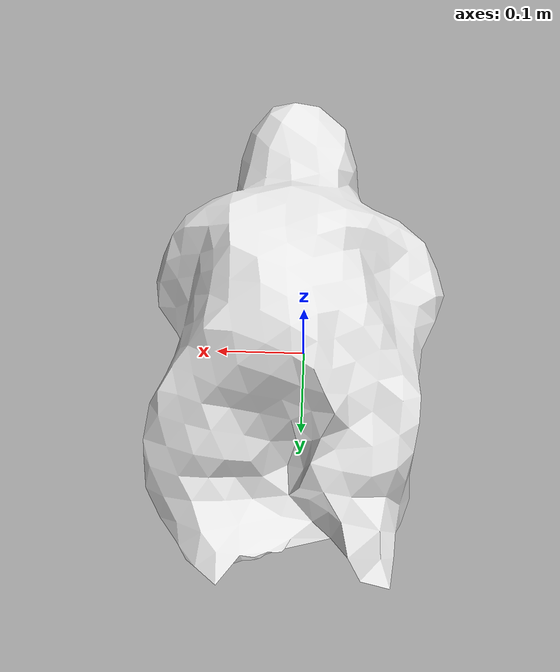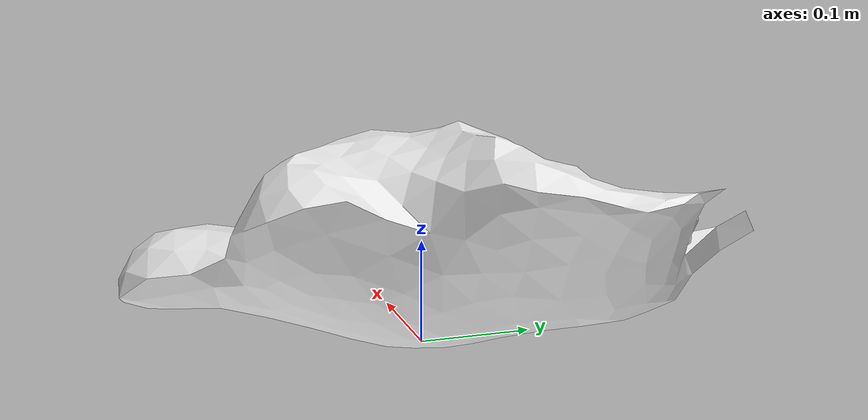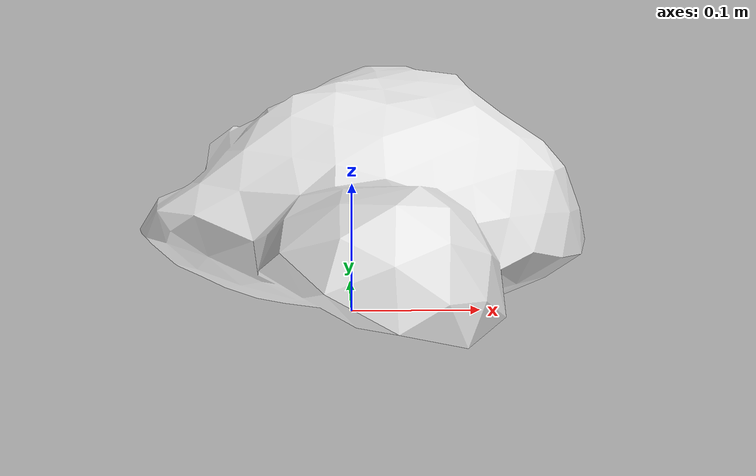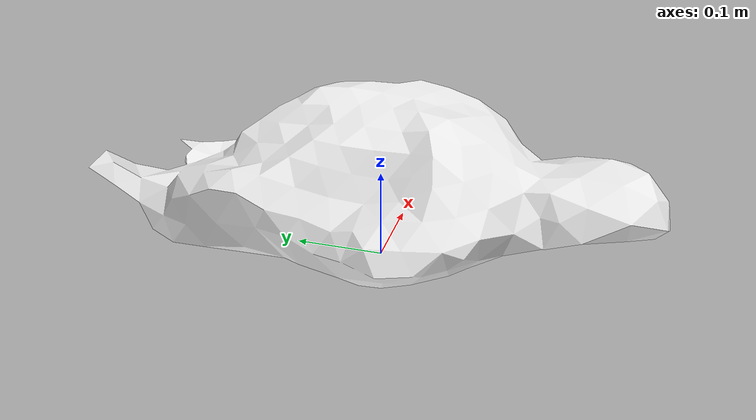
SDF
<?xml version="1.0" ?><sdf version="1.5"><model name="baby-doll2">
<link name="link">
<pose>0 0 0 0 0 0</pose>
<inertial>
<pose>0.006451 0.000711992 0.0983925 0 0 0</pose>
<mass>1.2</mass>
<inertia>
<ixx>0.0390897</ixx>
<ixy>0</ixy><iyy>0.0136977</iyy>
<ixz>0</ixz><iyz>0</iyz><izz>0.0462638</izz>
</inertia>
</inertial>
<visual name="visual">
<pose>0 0 0 0 0 0</pose>
<geometry><mesh><uri>model://baby-doll2/meshes/baby-doll2.dae</uri></mesh></geometry>
<material><script><uri>file://media/materials/scripts/gazebo.material</uri><name>Gazebo/WhiteGlow</name></script></material></visual>
<collision name="collision"><pose>0 0 0 0 0 0</pose><geometry><mesh><uri>model://baby-doll2/meshes/baby-doll2.dae</uri></mesh></geometry>
<surface><friction><ode><mu>1.000000</mu><mu2>1.000000</mu2></ode></friction></surface>
</collision></link></model></sdf>
